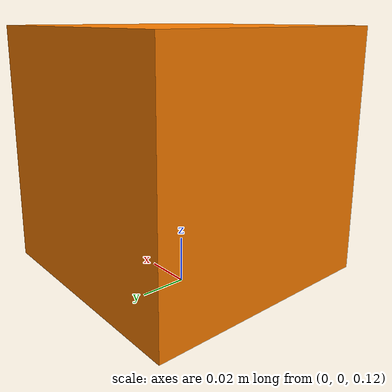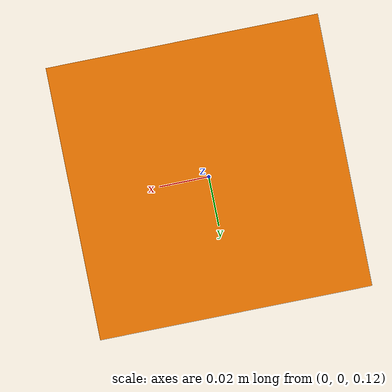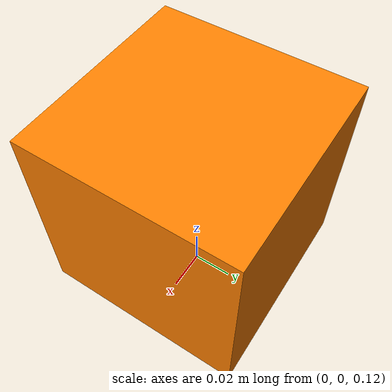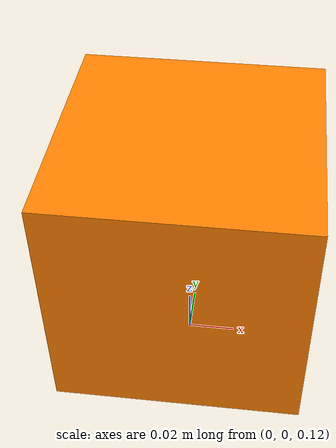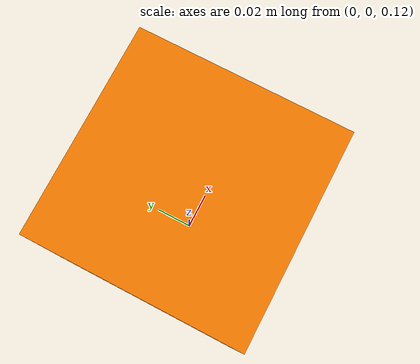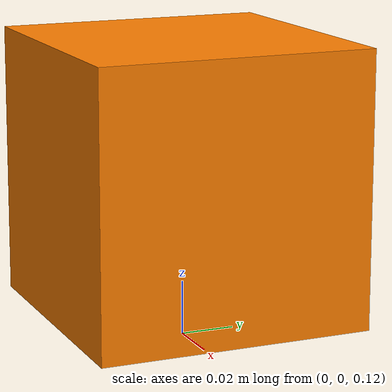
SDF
<?xml version="1.0" ?>
<sdf version="1.5">
  <world name="Moving_robot">
    <!-- 기존 주석 처리된 부분 유지 -->

    <light type="directional" name="sun">
      <!-- 빛 설정 유지 -->
    </light>

    <model name="ground_plane">
      <!-- 지면 모델 유지 -->
    </model>

    <model name="wheel_biped_robot">
      <self_collide>true</self_collide>
      <pose>0 0 0.18 0 0 0</pose>

      <!-- Mainbody 및 다른 링크들 정의 유지 -->

      <!-- IMU 링크 정의 활성화 -->
      <link name="imu_link">
        <pose>0 0 0 0 0 0</pose>
        <collision name="collision">
          <geometry>
            <box>
              <size>0.1 0.1 0.1</size>
            </box>
          </geometry>
        </collision>
        <visual name="visual">
          <geometry>
            <box>
              <size>0.1 0.1 0.1</size>
            </box>
          </geometry>
          <material>
            <ambient>1 0.5 0 1</ambient> <!-- 주황색 주변광 -->
            <diffuse>1 0.5 0 1</diffuse>
            <specular>0.5 0.5 0.5 1</specular>
            <emissive>0 0 0 0</emissive>
          </material>
        </visual>
        <inertial>
          <mass>0.1</mass>
          <pose>0 0 0 0 0 0</pose>
          <inertia>
            <ixx>0.00016667</ixx>
            <ixy>0.0</ixy>
            <ixz>0.0</ixz>
            <iyy>0.00016667</iyy>
            <iyz>0.0</iyz>
            <izz>0.00016667</izz>
          </inertia>
        </inertial>
      </link>

      <!-- IMU 센서 설정 활성화 -->
      <gazebo reference="imu_link">
        <gravity>true</gravity>
        <sensor name="imu_sensor" type="imu">
          <always_on>true</always_on>
          <update_rate>30</update_rate>
          <visualize>true</visualize>
          <topic>__default_topic__</topic>
          <plugin filename="libgazebo_ros_imu_sensor.so" name="imu_plugin">
            <topicName>imu</topicName>
            <bodyName>imu_link</bodyName>
            <updateRateHZ>30.0</updateRateHZ>
            <gaussianNoise>0.0</gaussianNoise>
            <xyzOffset>0 0 0</xyzOffset>
            <rpyOffset>0 0 0</rpyOffset>
            <frameName>imu_link</frameName>
            <initialOrientationAsReference>false</initialOrientationAsReference>
          </plugin>
          <pose>0 0 0 0 0 0</pose>
        </sensor>
      </gazebo>

      <!-- 고정 조인트 정의 유지 -->
      <joint name="B2IMU" type="fixed">
        <parent>Mainbody</parent>
        <child>imu_link</child>
        <pose>0 0 0 0 0 0</pose>
      </joint>

      <!-- 기존 플러그인 및 조인트 정의 유지 -->
      <plugin name="gazebo_ros_joint_state_publisher"
        filename="libgazebo_ros_joint_state_publisher.so">
        <update_rate>20</update_rate>
        <joint_name>B2TAR</joint_name>
        <joint_name>B2TAL</joint_name>
        <joint_name>CR2WR</joint_name>
        <joint_name>CL2WL</joint_name>
      </plugin>
    </model>
  </world>
</sdf>
